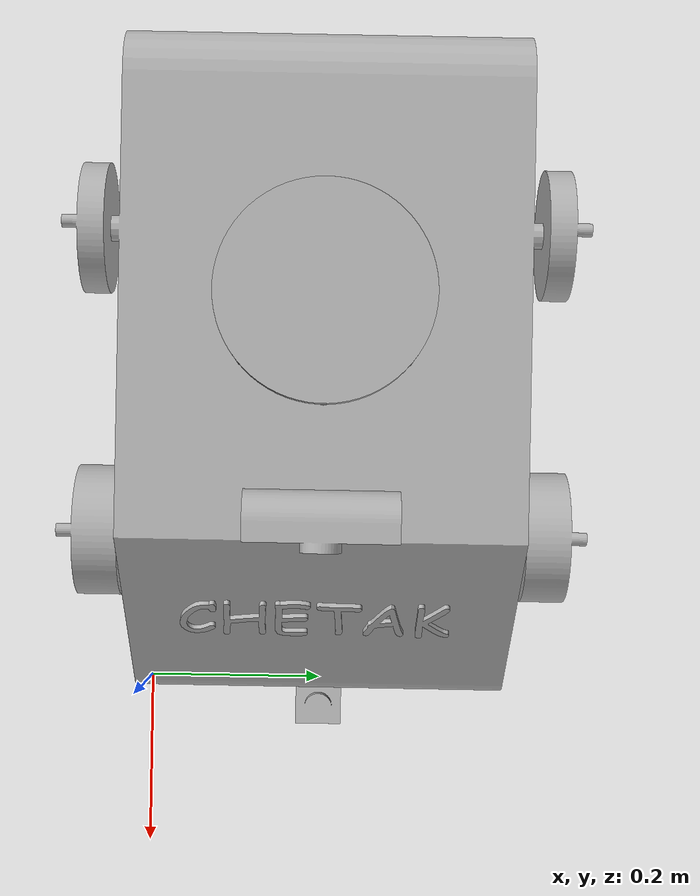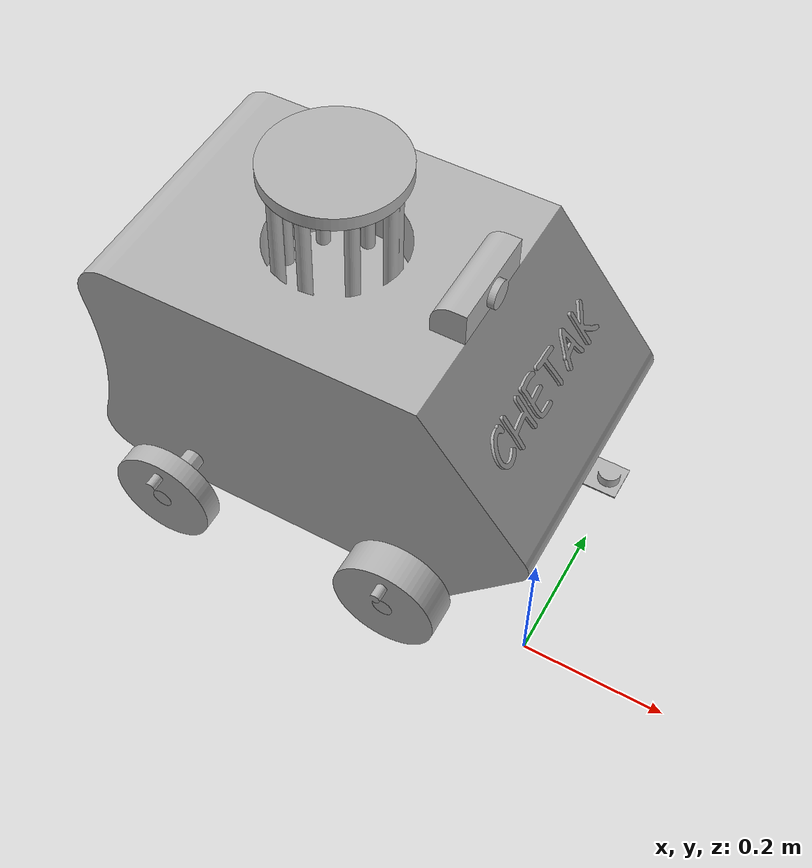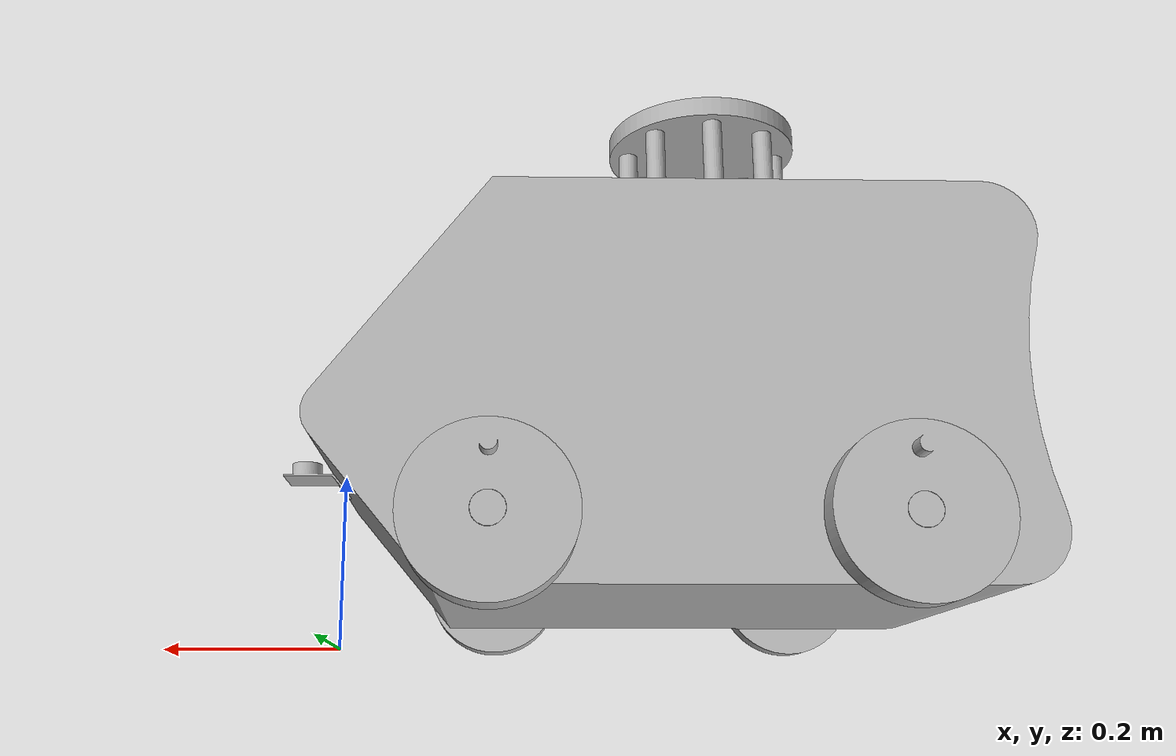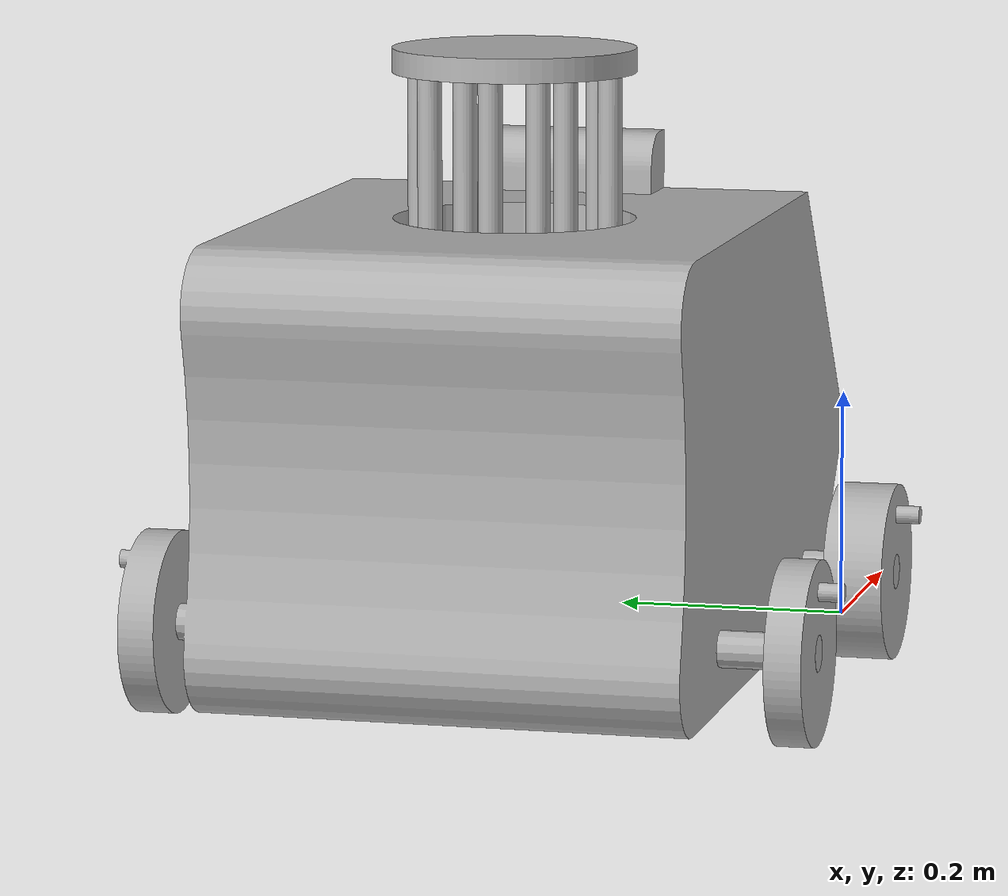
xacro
<?xml version="1.0" ?>
<robot name="chetak_wc" xmlns:xacro="http://www.ros.org/wiki/xacro">

<xacro:include filename="$(find chetak_wc_description)/urdf/materials.xacro" />
<xacro:include filename="$(find chetak_wc_description)/urdf/chetak_wc.gazebo" />

<gazebo reference="base_link">
   <material>Gazebo/Grey</material>
 </gazebo>
 <gazebo reference="f_l_1">
   <material>Gazebo/DarkGrey</material>
 </gazebo>
 <gazebo reference="f_r_1">
   <material>Gazebo/DarkGrey</material>
 </gazebo>
<gazebo reference="b_l_1">
   <material>Gazebo/DarkGrey</material>
 </gazebo>
 <gazebo reference="b_r_1">
   <material>Gazebo/DarkGrey</material>
 </gazebo>
 <gazebo reference="name_1">
   <material>Gazebo/White </material>
 </gazebo>
 <gazebo reference="uvc_rod__1">
   <material>Gazebo/BlueGlow</material>
 </gazebo>
 <gazebo reference="uvc_plate_1">
   <material>Gazebo/Grey </material>
 </gazebo>

 <gazebo reference="camera_1">
   <material>Gazebo/White</material>
 </gazebo>
 <gazebo reference="lidar_1">
   <material>Gazebo/White </material>
 </gazebo>

<link name="base_link">
  <inertial>
    <origin rpy="0 0 0" xyz="-0.36835618355447514 0.19999999999999993 0.20351102142822705"/>
    <mass value="30"/>
    <inertia ixx="16.448418" ixy="0.0" ixz="0.686477" iyy="27.73513" iyz="-0.0" izz="29.814385"/>
  </inertial>
  <visual>
    <origin rpy="0 0 0" xyz="0 0 0"/>
    <geometry>
      <mesh filename="package://chetak_wc_description/meshes/base_link.stl" scale="0.001 0.001 0.001"/>
    </geometry>
    <material name="silver"/>
  </visual>
  <collision>
    <origin rpy="0 0 0" xyz="0 0 0"/>
    <geometry>
      <mesh filename="package://chetak_wc_description/meshes/base_link.stl" scale="0.001 0.001 0.001"/>
    </geometry>
  </collision>
</link>

<link name="b_r_1">
  <inertial>
    <origin rpy="0 0 0" xyz="-5.950795411990839e-14 0.014827586206896545 0.00034482758620690834"/>
    <mass value="4.022907567692149"/>
    <inertia ixx="0.00623" ixy="0.0" ixz="-0.0" iyy="0.011756" iyz="3.4e-05" izz="0.006161"/>
  </inertial>
  <visual>
    <origin rpy="0 0 0" xyz="0.525 0.08 -0.075"/>
    <geometry>
      <mesh filename="package://chetak_wc_description/meshes/b_r_1.stl" scale="0.001 0.001 0.001"/>
    </geometry>
    <material name="silver"/>
  </visual>
  <collision>
    <origin rpy="0 0 0" xyz="0.525 0.08 -0.075"/>
    <geometry>
      <mesh filename="package://chetak_wc_description/meshes/b_r_1.stl" scale="0.001 0.001 0.001"/>
    </geometry>
  </collision>
</link>

<link name="f_l_1">
  <inertial>
    <origin rpy="0 0 0" xyz="-5.69266855876549e-14 -0.024854771784232288 0.00020746887966804906"/>
    <mass value="6.686349819405563"/>
    <inertia ixx="0.01123" ixy="-0.0" ixz="-0.0" iyy="0.019546" iyz="-4.8e-05" izz="0.011161"/>
  </inertial>
  <visual>
    <origin rpy="0 0 0" xyz="0.175 -0.48 -0.075"/>
    <geometry>
      <mesh filename="package://chetak_wc_description/meshes/f_l_1.stl" scale="0.001 0.001 0.001"/>
    </geometry>
    <material name="silver"/>
  </visual>
  <collision>
    <origin rpy="0 0 0" xyz="0.175 -0.48 -0.075"/>
    <geometry>
      <mesh filename="package://chetak_wc_description/meshes/f_l_1.stl" scale="0.001 0.001 0.001"/>
    </geometry>
  </collision>
</link>

<link name="f_r_1">
  <inertial>
    <origin rpy="0 0 0" xyz="-6.186717804723685e-14 0.024854771784232357 0.00020746887966806293"/>
    <mass value="6.686349819405568"/>
    <inertia ixx="0.01123" ixy="0.0" ixz="-0.0" iyy="0.019546" iyz="4.8e-05" izz="0.011161"/>
  </inertial>
  <visual>
    <origin rpy="0 0 0" xyz="0.175 0.08 -0.075"/>
    <geometry>
      <mesh filename="package://chetak_wc_description/meshes/f_r_1.stl" scale="0.001 0.001 0.001"/>
    </geometry>
    <material name="silver"/>
  </visual>
  <collision>
    <origin rpy="0 0 0" xyz="0.175 0.08 -0.075"/>
    <geometry>
      <mesh filename="package://chetak_wc_description/meshes/f_r_1.stl" scale="0.001 0.001 0.001"/>
    </geometry>
  </collision>
</link>

<link name="b_l_1">
  <inertial>
    <origin rpy="0 0 0" xyz="-5.684341886080802e-14 -0.01482758620689656 0.00034482758620690834"/>
    <mass value="4.022907567692145"/>
    <inertia ixx="0.00623" ixy="-0.0" ixz="-0.0" iyy="0.011756" iyz="-3.4e-05" izz="0.006161"/>
  </inertial>
  <visual>
    <origin rpy="0 0 0" xyz="0.525 -0.48 -0.075"/>
    <geometry>
      <mesh filename="package://chetak_wc_description/meshes/b_l_1.stl" scale="0.001 0.001 0.001"/>
    </geometry>
    <material name="silver"/>
  </visual>
  <collision>
    <origin rpy="0 0 0" xyz="0.525 -0.48 -0.075"/>
    <geometry>
      <mesh filename="package://chetak_wc_description/meshes/b_l_1.stl" scale="0.001 0.001 0.001"/>
    </geometry>
  </collision>
</link>

<link name="uvc_rod__1">
  <inertial>
    <origin rpy="0 0 0" xyz="0.07999983971351032 1.942890293094024e-16 0.10000000000000037"/>
    <mass value="3.9458403729087745"/>
    <inertia ixx="0.025878" ixy="-0.0" ixz="-0.0" iyy="0.025878" iyz="0.0" izz="0.025451"/>
  </inertial>
  <visual>
    <origin rpy="0 0 0" xyz="0.48087 -0.2 -0.32"/>
    <geometry>
      <mesh filename="package://chetak_wc_description/meshes/uvc_rod__1.stl" scale="0.001 0.001 0.001"/>
    </geometry>
    <material name="silver"/>
  </visual>
  <collision>
    <origin rpy="0 0 0" xyz="0.48087 -0.2 -0.32"/>
    <geometry>
      <mesh filename="package://chetak_wc_description/meshes/uvc_rod__1.stl" scale="0.001 0.001 0.001"/>
    </geometry>
  </collision>
</link>

<link name="uvc_plate_1">
  <inertial>
    <origin rpy="0 0 0" xyz="-1.602864894145739e-07 -8.326672684688674e-17 0.010000000000000009"/>
    <mass value="4.932300466135975"/>
    <inertia ixx="0.012495" ixy="0.0" ixz="-0.0" iyy="0.012495" iyz="0.0" izz="0.024662"/>
  </inertial>
  <visual>
    <origin rpy="0 0 0" xyz="0.40087 -0.2 -0.52"/>
    <geometry>
      <mesh filename="package://chetak_wc_description/meshes/uvc_plate_1.stl" scale="0.001 0.001 0.001"/>
    </geometry>
    <material name="silver"/>
  </visual>
  <collision>
    <origin rpy="0 0 0" xyz="0.40087 -0.2 -0.52"/>
    <geometry>
      <mesh filename="package://chetak_wc_description/meshes/uvc_plate_1.stl" scale="0.001 0.001 0.001"/>
    </geometry>
  </collision>
</link>

<link name="lidar_1">
  <inertial>
    <origin rpy="0 0 0" xyz="0.02465948040039212 0.0 0.0033123354222588386"/>
    <mass value="0.1374472217008489"/>
    <inertia ixx="2.2e-05" ixy="-0.0" ixz="-8e-06" iyy="3.6e-05" iyz="0.0" izz="4.5e-05"/>
  </inertial>
  <visual>
    <origin rpy="0 0 0" xyz="0.015464 -0.2 -0.156443"/>
    <geometry>
      <mesh filename="package://chetak_wc_description/meshes/lidar_1.stl" scale="0.001 0.001 0.001"/>
    </geometry>
    <material name="silver"/>
  </visual>
  <collision>
    <origin rpy="0 0 0" xyz="0.015464 -0.2 -0.156443"/>
    <geometry>
      <mesh filename="package://chetak_wc_description/meshes/lidar_1.stl" scale="0.001 0.001 0.001"/>
    </geometry>
  </collision>
</link>

<link name="camera_1">
  <inertial>
    <origin rpy="0 0 0" xyz="-0.02247030893236321 -1.4652168367490503e-13 0.023484452064101102"/>
    <mass value="2.814971712983161"/>
    <inertia ixx="0.005636" ixy="0.0" ixz="-8e-05" iyy="0.001135" iyz="0.0" izz="0.005704"/>
  </inertial>
  <visual>
    <origin rpy="0 0 0" xyz="0.175 -0.2 -0.4"/>
    <geometry>
      <mesh filename="package://chetak_wc_description/meshes/camera_1.stl" scale="0.001 0.001 0.001"/>
    </geometry>
    <material name="silver"/>
  </visual>
  <collision>
    <origin rpy="0 0 0" xyz="0.175 -0.2 -0.4"/>
    <geometry>
      <mesh filename="package://chetak_wc_description/meshes/camera_1.stl" scale="0.001 0.001 0.001"/>
    </geometry>
  </collision>
</link>

<link name="name_1">
  <inertial>
    <origin rpy="0 0 0" xyz="0.0018014269029504593 -0.025035547186853968 0.0017554805683628882"/>
    <mass value="0.1882623818568514"/>
    <inertia ixx="0.001308" ixy="-1e-06" ixz="2.4e-05" iyy="4.9e-05" iyz="1e-06" izz="0.001296"/>
  </inertial>
  <visual>
    <origin rpy="0 0 0" xyz="0.094915 -0.22 -0.297034"/>
    <geometry>
      <mesh filename="package://chetak_wc_description/meshes/name_1.stl" scale="0.001 0.001 0.001"/>
    </geometry>
    <material name="silver"/>
  </visual>
  <collision>
    <origin rpy="0 0 0" xyz="0.094915 -0.22 -0.297034"/>
    <geometry>
      <mesh filename="package://chetak_wc_description/meshes/name_1.stl" scale="0.001 0.001 0.001"/>
    </geometry>
  </collision>
</link>

<joint name="Rev7" type="continuous">
  <origin rpy="0 0 0" xyz="-0.525 -0.08 0.075"/>
  <parent link="base_link"/>
  <child link="b_r_1"/>
  <axis xyz="0.0 -1.0 0.0"/>
</joint>

<joint name="Rev8" type="continuous">
  <origin rpy="0 0 0" xyz="-0.175 0.48 0.075"/>
  <parent link="base_link"/>
  <child link="f_l_1"/>
  <axis xyz="0.0 -1.0 0.0"/>
</joint>

<joint name="Rev9" type="continuous">
  <origin rpy="0 0 0" xyz="-0.175 -0.08 0.075"/>
  <parent link="base_link"/>
  <child link="f_r_1"/>
  <axis xyz="0.0 -1.0 0.0"/>
</joint>

<joint name="Rev10" type="continuous">
  <origin rpy="0 0 0" xyz="-0.525 0.48 0.075"/>
  <parent link="base_link"/>
  <child link="b_l_1"/>
  <axis xyz="0.0 -1.0 0.0"/>
</joint>

<joint name="Rigid11" type="fixed">
  <origin rpy="0 0 0" xyz="-0.48087 0.2 0.32"/>
  <parent link="base_link"/>
  <child link="uvc_rod__1"/>
</joint>

<joint name="Rigid12" type="fixed">
  <origin rpy="0 0 0" xyz="-0.40087 0.2 0.52"/>
  <parent link="base_link"/>
  <child link="uvc_plate_1"/>
</joint>

<joint name="Rigid13" type="fixed">
  <origin rpy="0 0 0" xyz="-0.015464 0.2 0.156443"/>
  <parent link="base_link"/>
  <child link="lidar_1"/>
</joint>

<joint name="Rigid14" type="fixed">
  <origin rpy="0 0 0" xyz="-0.175 0.2 0.4"/>
  <parent link="base_link"/>
  <child link="camera_1"/>
</joint>

<joint name="Rigid15" type="fixed">
  <origin rpy="0 0 0" xyz="-0.094915 0.22 0.297034"/>
  <parent link="base_link"/>
  <child link="name_1"/>
</joint>

</robot>

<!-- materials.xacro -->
<robot name="chetak_wc" xmlns:xacro="http://www.ros.org/wiki/xacro" >

<material name="silver">
  <color rgba="0.700 0.700 0.700 1.000"/>
</material>

</robot>

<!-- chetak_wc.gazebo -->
<robot name="chetak_wc" xmlns:xacro="http://www.ros.org/wiki/xacro" >

<xacro:property name="body_color" value="Gazebo/Silver" />

<gazebo>
<plugin filename="libgazebo_ros_diff_drive.so" name="differential_drive_controller">
<legacyMode>false</legacyMode>
<alwaysOn>true</alwaysOn>
<updateRate>10</updateRate>
<leftJoint>Rev8</leftJoint>
<leftJoint>Rev10</leftJoint>
<rightJoint>Rev7</rightJoint>
<rightJoint>Rev9</rightJoint>
<wheelSeparation>0.64</wheelSeparation>
<wheelDiameter>0.3</wheelDiameter>
<torque>0.9</torque>
<commandTopic>cmd_vel</commandTopic>
<odometryTopic>odom</odometryTopic>
<odometryFrame>odom</odometryFrame>
<robotBaseFrame>base_link</robotBaseFrame>
<publishWheelTF>true</publishWheelTF>
<publishWheelJointState>true</publishWheelJointState>
</plugin>
</gazebo>

<gazebo reference="lidar_1">
    <sensor type="gpu_ray" name="Lidar">
      <pose>0 0 0 0 0 0</pose>
      <visualize>true</visualize>
      <update_rate>40</update_rate>
      <ray>
        <scan>
          <horizontal>
            <samples>720</samples>
            <resolution>1</resolution>
            <min_angle>-1.570796</min_angle>
            <max_angle>1.570796</max_angle>
          </horizontal>
        </scan>
        <range>
          <min>0.10</min>
          <max>30.0</max>
          <resolution>0.01</resolution>
        </range>
        <noise>
          <type>gaussian</type>
          <mean>0.0</mean>
          <stddev>0.01</stddev>
        </noise>
      </ray>
      <plugin name="gazebo_ros_head_hokuyo_controller" filename="libgazebo_ros_gpu_laser.so">
        <topicName>/scan</topicName>
        <frameName>lidar_1</frameName>
      </plugin>
    </sensor>
  </gazebo>

<gazebo reference="base_link">
  <material>${body_color}</material>
  <mu1>0.2</mu1>
  <mu2>0.2</mu2>
  <selfCollide>true</selfCollide>
  <gravity>true</gravity>
</gazebo>

<gazebo reference="b_r_1">
  <material>${body_color}</material>
  <mu1>0.2</mu1>
  <mu2>0.2</mu2>
  <selfCollide>true</selfCollide>
</gazebo>

<gazebo reference="f_l_1">
  <material>${body_color}</material>
  <mu1>0.2</mu1>
  <mu2>0.2</mu2>
  <selfCollide>true</selfCollide>
</gazebo>

<gazebo reference="f_r_1">
  <material>${body_color}</material>
  <mu1>0.2</mu1>
  <mu2>0.2</mu2>
  <selfCollide>true</selfCollide>
</gazebo>

<gazebo reference="b_l_1">
  <material>${body_color}</material>
  <mu1>0.2</mu1>
  <mu2>0.2</mu2>
  <selfCollide>true</selfCollide>
</gazebo>

<gazebo reference="uvc_rod__1">
  <material>${body_color}</material>
  <mu1>0.2</mu1>
  <mu2>0.2</mu2>
  <selfCollide>true</selfCollide>
</gazebo>

<gazebo reference="uvc_plate_1">
  <material>${body_color}</material>
  <mu1>0.2</mu1>
  <mu2>0.2</mu2>
  <selfCollide>true</selfCollide>
</gazebo>

<gazebo reference="lidar_1">
  <material>${body_color}</material>
  <mu1>0.2</mu1>
  <mu2>0.2</mu2>
  <selfCollide>true</selfCollide>
</gazebo>

<gazebo reference="camera_1">
  <material>${body_color}</material>
  <mu1>0.2</mu1>
  <mu2>0.2</mu2>
  <selfCollide>true</selfCollide>
</gazebo>

<gazebo reference="name_1">
  <material>${body_color}</material>
  <mu1>0.2</mu1>
  <mu2>0.2</mu2>
  <selfCollide>true</selfCollide>
</gazebo>

</robot>
